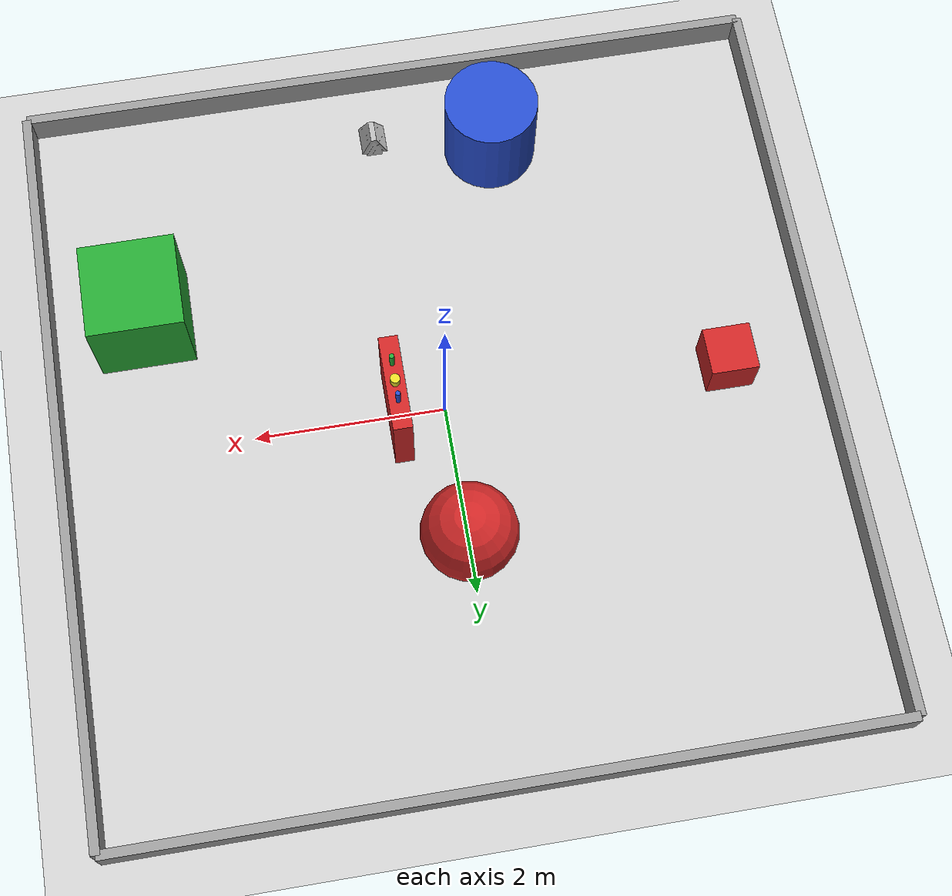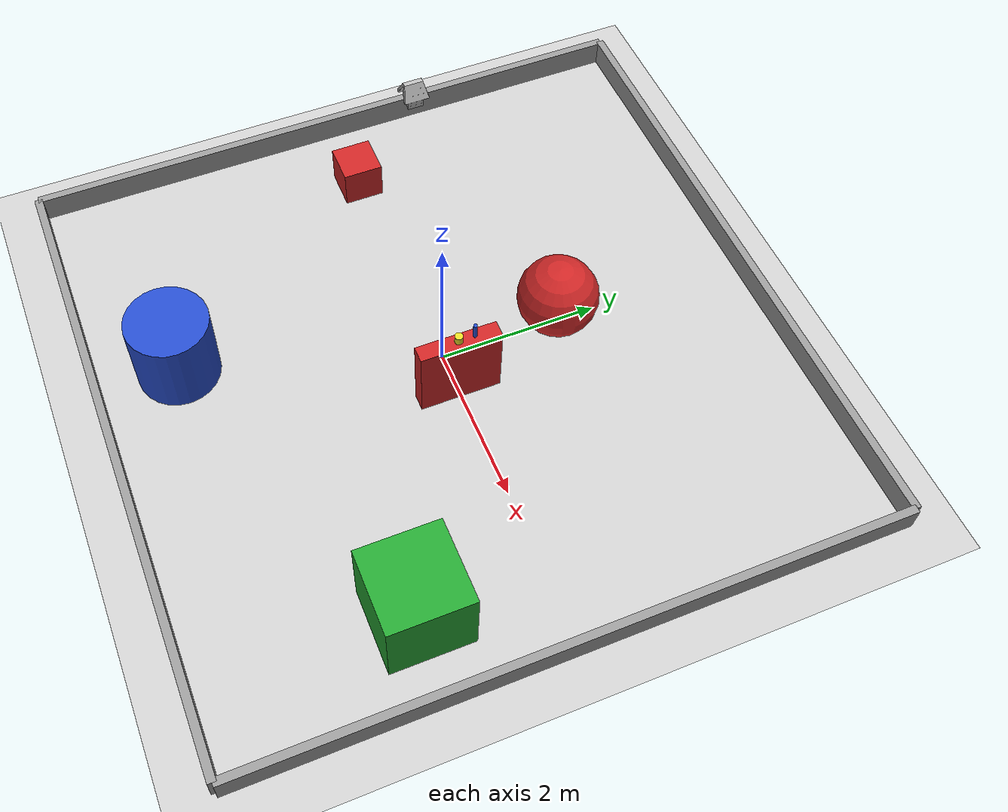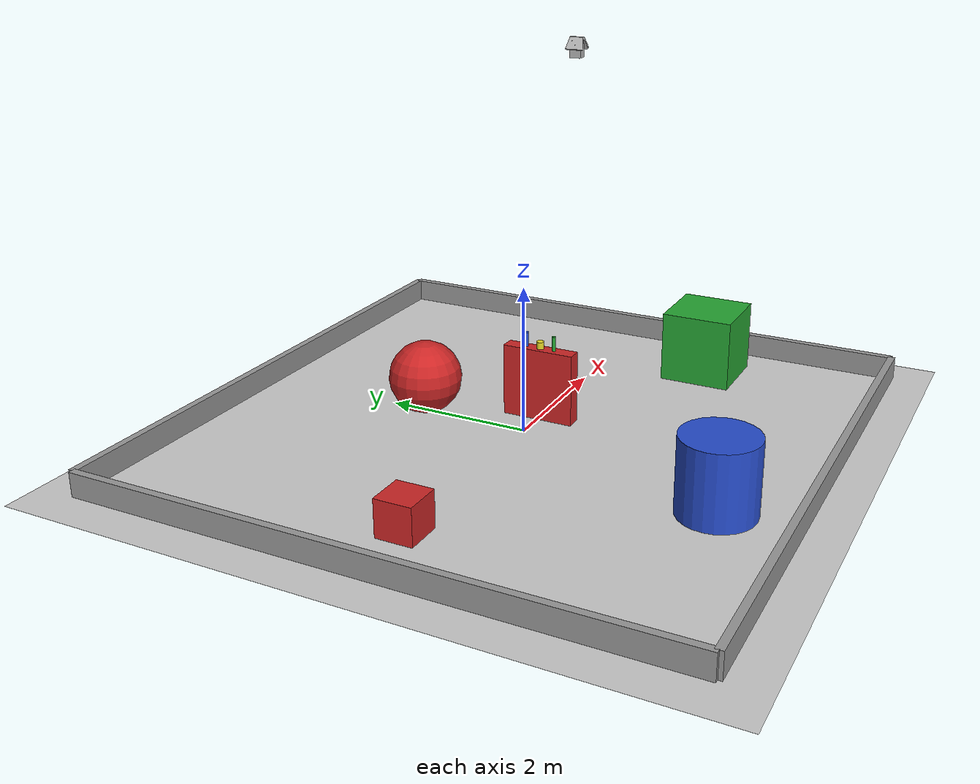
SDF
<sdf version="1.4">
 <world name="default">
  <include><uri>model://sun</uri></include>
  <include><uri>model://ground_plane</uri></include>
  <physics type="ode">
   <max_step_size>0.002</max_step_size>
   <real_time_factor>1</real_time_factor>
   <real_time_update_rate>500</real_time_update_rate>
   <gravity>0 0 -9.8</gravity>
  </physics>
  <model name="sphere">
   <pose>0 1.5 0.5 0 0 0</pose>
   <link name="link">
    <collision name="collision"><geometry><sphere><radius>0.5</radius></sphere></geometry></collision>
    <visual name="visual">
     <geometry><sphere><radius>0.5</radius></sphere></geometry>
     <material><script><name>Gazebo/RedBright</name></script></material>
    </visual>
   </link>
  </model>
  <model name="cube">
   <pose>3.0 -1.5 0.5 0 0 0</pose>
   <link name="link">
    <collision name="collision"><geometry><box><size>1 1 1</size></box></geometry></collision>
    <visual name="visual">
     <geometry><box><size>1 1 1</size></box></geometry>
     <material><script><name>Gazebo/Green</name></script></material>
    </visual>
   </link>
  </model>
  <model name="cylinder">
   <pose>-1.0 -3.0 0.5 0 0 0</pose>
   <link name="link">
    <collision name="collision">
     <geometry><cylinder><radius>0.5</radius><length>1.0</length></cylinder></geometry>
    </collision>
    <visual name="visual">
     <geometry><cylinder><radius>0.5</radius><length>1.0</length></cylinder></geometry>
     <material><script><name>Gazebo/Blue</name></script></material>
    </visual>
   </link>
  </model>
  <model name="cube">
   <pose>-3.0 0.0 0.25 0 0 0</pose>
   <link name="link">
    <collision name="collision"><geometry><box><size>0.5 0.5 0.5</size></box></geometry></collision>
    <visual name="visual">
     <geometry><box><size>0.5 0.5 0.5</size></box></geometry>
     <material><script><name>Gazebo/Red</name></script></material>
    </visual>
   </link>
  </model>
  <model name="grey_wall_0">
   <static>1</static>
   <link name="link">
    <pose>0 0 0.165 0 0 0</pose>
    <collision name="collision"><geometry><box><size>8 0.1 0.33</size></box></geometry></collision>
    <visual name="visual">
     <cast_shadows>0</cast_shadows>
     <geometry><box><size>8 0.1 0.33</size></box></geometry>
     <material>
      <script>
       <uri>model://grey_wall/materials/scripts</uri>
       <uri>model://grey_wall/materials/textures</uri>
       <name>vrc/grey_wall</name>
      </script>
     </material>
    </visual>
    <velocity_decay><linear>0</linear><angular>0</angular></velocity_decay>
   </link>
   <pose>0 4 0 0 -0 0</pose>
  </model>
  <model name="grey_wall_1">
   <static>1</static>
   <link name="link">
    <pose>0 0 0.165 0 0 0</pose>
    <collision name="collision"><geometry><box><size>8 0.1 0.33</size></box></geometry></collision>
    <visual name="visual">
     <cast_shadows>0</cast_shadows>
     <geometry><box><size>8 0.1 0.33</size></box></geometry>
     <material>
      <script>
       <uri>model://grey_wall/materials/scripts</uri>
       <uri>model://grey_wall/materials/textures</uri>
       <name>vrc/grey_wall</name>
      </script>
     </material>
    </visual>
    <velocity_decay><linear>0</linear><angular>0</angular></velocity_decay>
   </link>
   <pose>0 -4 0 0 -0 0</pose>
  </model>
  <model name="grey_wall_2">
   <static>1</static>
   <link name="link">
    <pose>0 0 0.165 0 0 0</pose>
    <collision name="collision"><geometry><box><size>8 0.1 0.33</size></box></geometry></collision>
    <visual name="visual">
     <cast_shadows>0</cast_shadows>
     <geometry><box><size>8 0.1 0.33</size></box></geometry>
     <material>
      <script>
       <uri>model://grey_wall/materials/scripts</uri>
       <uri>model://grey_wall/materials/textures</uri>
       <name>vrc/grey_wall</name>
      </script>
     </material>
    </visual>
    <velocity_decay><linear>0</linear><angular>0</angular></velocity_decay>
   </link>
   <pose>4 0 0 0 -0 1.57102</pose>
  </model>
  <model name="grey_wall_3">
   <static>1</static>
   <link name="link">
    <pose>0 0 0.165 0 0 0</pose>
    <collision name="collision"><geometry><box><size>8 0.1 0.33</size></box></geometry></collision>
    <visual name="visual">
     <cast_shadows>0</cast_shadows>
     <geometry><box><size>8 0.1 0.33</size></box></geometry>
     <material>
      <script>
       <uri>model://grey_wall/materials/scripts</uri>
       <uri>model://grey_wall/materials/textures</uri>
       <name>vrc/grey_wall</name>
      </script>
     </material>
    </visual>
    <velocity_decay><linear>0</linear><angular>0</angular></velocity_decay>
   </link>
   <pose>-4 0 0 0 0 1.57102</pose>
  </model>
  <model name="table">
   <static>1</static>
   <pose>0.5 0.0 0.5 0 0 0</pose>
   <link name="link">
    <inertial>
     <mass>10</mass>
     <inertia><ixx>0.1</ixx><ixy>0.0</ixy><ixz>0.0</ixz><iyy>0.015</iyy><iyz>0.0</iyz><izz>0.1</izz></inertia>
    </inertial>
    <collision name="collision">
     <geometry><box><size>0.2 1 1</size></box></geometry>
     <surface><friction><ode><mu>0.4</mu><mu2>0.4</mu2></ode></friction></surface>
    </collision>
    <visual name="visual">
     <geometry><box><size>0.2 1 1</size></box></geometry>
     <material><script><name>Gazebo/Red</name></script></material>
    </visual>
   </link>
  </model>
  <model name="target_cylinder">
   <pose>0.5 0 1.05 0 0 0</pose>
   <link name="link">
    <inertial>
     <mass>1</mass>
     <inertia><ixx>0.1</ixx><ixy>0.0</ixy><ixz>0.0</ixz><iyy>0.1</iyy><iyz>0.0</iyz><izz>0.1</izz></inertia>
    </inertial>
    <collision name="collision">
     <geometry><cylinder><radius>0.05</radius><length>0.1</length></cylinder></geometry>
     <surface><friction><ode><mu>1</mu><mu2>1</mu2></ode></friction></surface>
    </collision>
    <visual name="visual">
     <geometry><cylinder><radius>0.05</radius><length>0.1</length></cylinder></geometry>
     <material><script><name>Gazebo/Yellow</name></script></material>
    </visual>
   </link>
  </model>
  <model name="target_cylinder">
   <pose>0.5 0.2 1.1 0 0 0</pose>
   <link name="link">
    <inertial>
     <mass>0.1</mass>
     <inertia><ixx>0.01</ixx><ixy>0.0</ixy><ixz>0.0</ixz><iyy>0.01</iyy><iyz>0.0</iyz><izz>0.01</izz></inertia>
    </inertial>
    <collision name="collision">
     <geometry><cylinder><radius>0.025</radius><length>0.2</length></cylinder></geometry>
     <surface><friction><ode><mu>1</mu><mu2>1</mu2></ode></friction></surface>
    </collision>
    <visual name="visual">
     <geometry><cylinder><radius>0.025</radius><length>0.2</length></cylinder></geometry>
     <material><script><name>Gazebo/Blue</name></script></material>
    </visual>
   </link>
  </model>
  <model name="target_cylinder">
   <pose>0.5 -0.2 1.1 0 0 0</pose>
   <link name="link">
    <inertial>
     <mass>0.1</mass>
     <inertia><ixx>0.01</ixx><ixy>0.0</ixy><ixz>0.0</ixz><iyy>0.01</iyy><iyz>0.0</iyz><izz>0.01</izz></inertia>
    </inertial>
    <collision name="collision">
     <geometry><cylinder><radius>0.025</radius><length>0.2</length></cylinder></geometry>
     <surface><friction><ode><mu>1</mu><mu2>1</mu2></ode></friction></surface>
    </collision>
    <visual name="visual">
     <geometry><cylinder><radius>0.025</radius><length>0.2</length></cylinder></geometry>
     <material><script><name>Gazebo/Green</name></script></material>
    </visual>
   </link>
  </model>
  <model name="my_model"><pose>0.5 -0.4 1 0 0 0</pose><include><uri>model://my_model</uri></include></model>
 </world>
</sdf>

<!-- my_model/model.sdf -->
<sdf version="1.4">
  <model name='my_model'>
    <link name='my_link'>
      <inertial>
        <mass>1.0</mass>
        <inertia>
          <ixx>0.1</ixx>
          <ixy>0.0</ixy>
	  <ixz>0.0</ixz>
          <iyy>0.1</iyy>
          <iyz>0.0</iyz>
          <izz>0.1</izz>
        </inertia>
      </inertial>
      <collision name='my_collision'>
	<pose> -0.1 0.04 0 1.5708 0 0</pose>
        <geometry>
          <mesh>
            <uri>model://my_model/my_mesh.stl</uri>
            <scale>0.01 0.01 0.01</scale>
          </mesh>
        </geometry>
      </collision>
      <visual name='my_visual'>
	<pose> -0.1 0.04 0 1.5708 0 0</pose>
        <geometry>
          <mesh>
            <uri>model://my_model/my_mesh.stl</uri>
            <scale>0.01 0.01 0.01</scale>
          </mesh>
        </geometry>
      </visual>
    </link>
  </model>
</sdf>
